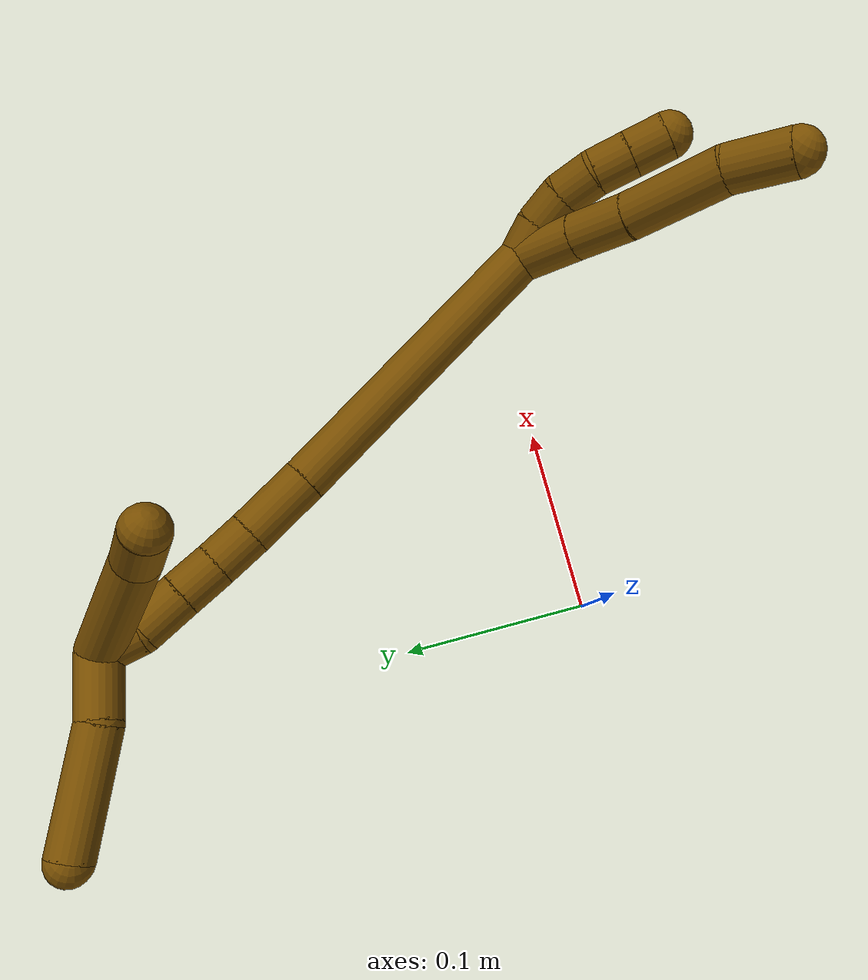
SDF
<sdf version="1.7">
 <world name="default">
  <model name="12">
   <static>0</static>
   <link name="12">
    <collision name="collision-cylinder-e_1_2_8">
     <pose>-0.008492 -0.004997 0.013648 0.35095 -0.528788 -0.095927</pose>
     <geometry><cylinder><radius>0.0125</radius><length>0.033667</length></cylinder></geometry>
     <surface>
      <friction><ode><mu>1.16</mu><mu2>1.16</mu2><slip1>0</slip1><slip2>0</slip2></ode></friction>
      <contact><ode><kp>1e+06</kp><kd>1</kd><max_vel>0</max_vel><min_depth>0.001</min_depth></ode></contact>
     </surface>
    </collision>
    <visual name="visual-cylinder-e_1_2_8">
     <pose>-0.008492 -0.004997 0.013648 0.35095 -0.528788 -0.095927</pose>
     <geometry><cylinder><radius>0.0125</radius><length>0.033667</length></cylinder></geometry>
     <material><ambient>0.466667 0.301961 0 1</ambient></material>
    </visual>
    <collision name="collision-cylinder-e_2_8_9">
     <pose>-0.024984 -0.014319 0.039626 0.337378 -0.549355 -0.095912</pose>
     <geometry><cylinder><radius>0.0125</radius><length>0.03064</length></cylinder></geometry>
     <surface>
      <friction><ode><mu>1.16</mu><mu2>1.16</mu2><slip1>0</slip1><slip2>0</slip2></ode></friction>
      <contact><ode><kp>1e+06</kp><kd>1</kd><max_vel>0</max_vel><min_depth>0.001</min_depth></ode></contact>
     </surface>
    </collision>
    <visual name="visual-cylinder-e_2_8_9">
     <pose>-0.024984 -0.014319 0.039626 0.337378 -0.549355 -0.095912</pose>
     <geometry><cylinder><radius>0.0125</radius><length>0.03064</length></cylinder></geometry>
     <material><ambient>0.466667 0.301961 0 1</ambient></material>
    </visual>
    <collision name="collision-cylinder-e_3_9_10">
     <pose>-0.044915 -0.026065 0.074093 0.32348 -0.472442 -0.078512</pose>
     <geometry><cylinder><radius>0.0125</radius><length>0.052442</length></cylinder></geometry>
     <surface>
      <friction><ode><mu>1.16</mu><mu2>1.16</mu2><slip1>0</slip1><slip2>0</slip2></ode></friction>
      <contact><ode><kp>1e+06</kp><kd>1</kd><max_vel>0</max_vel><min_depth>0.001</min_depth></ode></contact>
     </surface>
    </collision>
    <visual name="visual-cylinder-e_3_9_10">
     <pose>-0.044915 -0.026065 0.074093 0.32348 -0.472442 -0.078512</pose>
     <geometry><cylinder><radius>0.0125</radius><length>0.052442</length></cylinder></geometry>
     <material><ambient>0.466667 0.301961 0 1</ambient></material>
    </visual>
    <collision name="collision-cylinder-e_4_10_6">
     <pose>-0.067239 -0.038426 0.108232 0.390439 -0.675183 -0.138601</pose>
     <geometry><cylinder><radius>0.0125</radius><length>0.033251</length></cylinder></geometry>
     <surface>
      <friction><ode><mu>1.16</mu><mu2>1.16</mu2><slip1>0</slip1><slip2>0</slip2></ode></friction>
      <contact><ode><kp>1e+06</kp><kd>1</kd><max_vel>0</max_vel><min_depth>0.001</min_depth></ode></contact>
     </surface>
    </collision>
    <visual name="visual-cylinder-e_4_10_6">
     <pose>-0.067239 -0.038426 0.108232 0.390439 -0.675183 -0.138601</pose>
     <geometry><cylinder><radius>0.0125</radius><length>0.033251</length></cylinder></geometry>
     <material><ambient>0.466667 0.301961 0 1</ambient></material>
    </visual>
    <collision name="collision-cylinder-e_1_2_11">
     <pose>0.002604 -0.004087 0.008747 0.437049 0.263456 0.05883</pose>
     <geometry><cylinder><radius>0.0125</radius><length>0.02</length></cylinder></geometry>
     <surface>
      <friction><ode><mu>1.16</mu><mu2>1.16</mu2><slip1>0</slip1><slip2>0</slip2></ode></friction>
      <contact><ode><kp>1e+06</kp><kd>1</kd><max_vel>0</max_vel><min_depth>0.001</min_depth></ode></contact>
     </surface>
    </collision>
    <visual name="visual-cylinder-e_1_2_11">
     <pose>0.002604 -0.004087 0.008747 0.437049 0.263456 0.05883</pose>
     <geometry><cylinder><radius>0.0125</radius><length>0.02</length></cylinder></geometry>
     <material><ambient>0.466667 0.301961 0 1</ambient></material>
    </visual>
    <collision name="collision-cylinder-e_2_11_12">
     <pose>0.005265 -0.012046 0.026714 0.397682 0.005637 0.001136</pose>
     <geometry><cylinder><radius>0.0125</radius><length>0.02</length></cylinder></geometry>
     <surface>
      <friction><ode><mu>1.16</mu><mu2>1.16</mu2><slip1>0</slip1><slip2>0</slip2></ode></friction>
      <contact><ode><kp>1e+06</kp><kd>1</kd><max_vel>0</max_vel><min_depth>0.001</min_depth></ode></contact>
     </surface>
    </collision>
    <visual name="visual-cylinder-e_2_11_12">
     <pose>0.005265 -0.012046 0.026714 0.397682 0.005637 0.001136</pose>
     <geometry><cylinder><radius>0.0125</radius><length>0.02</length></cylinder></geometry>
     <material><ambient>0.466667 0.301961 0 1</ambient></material>
    </visual>
    <collision name="collision-cylinder-e_3_12_13">
     <pose>0.002579 -0.019933 0.044672 0.430645 -0.277797 -0.061133</pose>
     <geometry><cylinder><radius>0.0125</radius><length>0.02</length></cylinder></geometry>
     <surface>
      <friction><ode><mu>1.16</mu><mu2>1.16</mu2><slip1>0</slip1><slip2>0</slip2></ode></friction>
      <contact><ode><kp>1e+06</kp><kd>1</kd><max_vel>0</max_vel><min_depth>0.001</min_depth></ode></contact>
     </surface>
    </collision>
    <visual name="visual-cylinder-e_3_12_13">
     <pose>0.002579 -0.019933 0.044672 0.430645 -0.277797 -0.061133</pose>
     <geometry><cylinder><radius>0.0125</radius><length>0.02</length></cylinder></geometry>
     <material><ambient>0.466667 0.301961 0 1</ambient></material>
    </visual>
    <collision name="collision-cylinder-e_4_13_14">
     <pose>-0.003507 -0.029655 0.060911 0.650517 -0.340916 -0.115966</pose>
     <geometry><cylinder><radius>0.0125</radius><length>0.02</length></cylinder></geometry>
     <surface>
      <friction><ode><mu>1.16</mu><mu2>1.16</mu2><slip1>0</slip1><slip2>0</slip2></ode></friction>
      <contact><ode><kp>1e+06</kp><kd>1</kd><max_vel>0</max_vel><min_depth>0.001</min_depth></ode></contact>
     </surface>
    </collision>
    <visual name="visual-cylinder-e_4_13_14">
     <pose>-0.003507 -0.029655 0.060911 0.650517 -0.340916 -0.115966</pose>
     <geometry><cylinder><radius>0.0125</radius><length>0.02</length></cylinder></geometry>
     <material><ambient>0.466667 0.301961 0 1</ambient></material>
    </visual>
    <collision name="collision-cylinder-e_5_14_5">
     <pose>-0.010229 -0.041139 0.075842 0.660742 -0.344616 -0.119225</pose>
     <geometry><cylinder><radius>0.0125</radius><length>0.02</length></cylinder></geometry>
     <surface>
      <friction><ode><mu>1.16</mu><mu2>1.16</mu2><slip1>0</slip1><slip2>0</slip2></ode></friction>
      <contact><ode><kp>1e+06</kp><kd>1</kd><max_vel>0</max_vel><min_depth>0.001</min_depth></ode></contact>
     </surface>
    </collision>
    <visual name="visual-cylinder-e_5_14_5">
     <pose>-0.010229 -0.041139 0.075842 0.660742 -0.344616 -0.119225</pose>
     <geometry><cylinder><radius>0.0125</radius><length>0.02</length></cylinder></geometry>
     <material><ambient>0.466667 0.301961 0 1</ambient></material>
    </visual>
    <collision name="collision-cylinder-e_1_2_15">
     <pose>-0.013064 0.064532 -0.050738 -2.2371 -0.157818 0.322688</pose>
     <geometry><cylinder><radius>0.0125</radius><length>0.166246</length></cylinder></geometry>
     <surface>
      <friction><ode><mu>1.16</mu><mu2>1.16</mu2><slip1>0</slip1><slip2>0</slip2></ode></friction>
      <contact><ode><kp>1e+06</kp><kd>1</kd><max_vel>0</max_vel><min_depth>0.001</min_depth></ode></contact>
     </surface>
    </collision>
    <visual name="visual-cylinder-e_1_2_15">
     <pose>-0.013064 0.064532 -0.050738 -2.2371 -0.157818 0.322688</pose>
     <geometry><cylinder><radius>0.0125</radius><length>0.166246</length></cylinder></geometry>
     <material><ambient>0.466667 0.301961 0 1</ambient></material>
    </visual>
    <collision name="collision-cylinder-e_2_15_16">
     <pose>-0.028893 0.144495 -0.113048 -2.21424 -0.142397 0.283343</pose>
     <geometry><cylinder><radius>0.0125</radius><length>0.03897</length></cylinder></geometry>
     <surface>
      <friction><ode><mu>1.16</mu><mu2>1.16</mu2><slip1>0</slip1><slip2>0</slip2></ode></friction>
      <contact><ode><kp>1e+06</kp><kd>1</kd><max_vel>0</max_vel><min_depth>0.001</min_depth></ode></contact>
     </surface>
    </collision>
    <visual name="visual-cylinder-e_2_15_16">
     <pose>-0.028893 0.144495 -0.113048 -2.21424 -0.142397 0.283343</pose>
     <geometry><cylinder><radius>0.0125</radius><length>0.03897</length></cylinder></geometry>
     <material><ambient>0.466667 0.301961 0 1</ambient></material>
    </visual>
    <collision name="collision-cylinder-e_3_16_17">
     <pose>-0.033295 0.169721 -0.130863 -2.13826 -0.139954 0.254211</pose>
     <geometry><cylinder><radius>0.0125</radius><length>0.023461</length></cylinder></geometry>
     <surface>
      <friction><ode><mu>1.16</mu><mu2>1.16</mu2><slip1>0</slip1><slip2>0</slip2></ode></friction>
      <contact><ode><kp>1e+06</kp><kd>1</kd><max_vel>0</max_vel><min_depth>0.001</min_depth></ode></contact>
     </surface>
    </collision>
    <visual name="visual-cylinder-e_3_16_17">
     <pose>-0.033295 0.169721 -0.130863 -2.13826 -0.139954 0.254211</pose>
     <geometry><cylinder><radius>0.0125</radius><length>0.023461</length></cylinder></geometry>
     <material><ambient>0.466667 0.301961 0 1</ambient></material>
    </visual>
    <collision name="collision-cylinder-e_4_17_18">
     <pose>-0.036373 0.189339 -0.14285 -2.09991 -0.126084 0.219191</pose>
     <geometry><cylinder><radius>0.0125</radius><length>0.022938</length></cylinder></geometry>
     <surface>
      <friction><ode><mu>1.16</mu><mu2>1.16</mu2><slip1>0</slip1><slip2>0</slip2></ode></friction>
      <contact><ode><kp>1e+06</kp><kd>1</kd><max_vel>0</max_vel><min_depth>0.001</min_depth></ode></contact>
     </surface>
    </collision>
    <visual name="visual-cylinder-e_4_17_18">
     <pose>-0.036373 0.189339 -0.14285 -2.09991 -0.126084 0.219191</pose>
     <geometry><cylinder><radius>0.0125</radius><length>0.022938</length></cylinder></geometry>
     <material><ambient>0.466667 0.301961 0 1</ambient></material>
    </visual>
    <collision name="collision-cylinder-e_5_18_19">
     <pose>-0.039553 0.210202 -0.155282 -2.11544 -0.133798 0.236726</pose>
     <geometry><cylinder><radius>0.0125</radius><length>0.02605</length></cylinder></geometry>
     <surface>
      <friction><ode><mu>1.16</mu><mu2>1.16</mu2><slip1>0</slip1><slip2>0</slip2></ode></friction>
      <contact><ode><kp>1e+06</kp><kd>1</kd><max_vel>0</max_vel><min_depth>0.001</min_depth></ode></contact>
     </surface>
    </collision>
    <visual name="visual-cylinder-e_5_18_19">
     <pose>-0.039553 0.210202 -0.155282 -2.11544 -0.133798 0.236726</pose>
     <geometry><cylinder><radius>0.0125</radius><length>0.02605</length></cylinder></geometry>
     <material><ambient>0.466667 0.301961 0 1</ambient></material>
    </visual>
    <collision name="collision-cylinder-e_6_19_1">
     <pose>-0.039472 0.230645 -0.167715 -2.11931 0.163543 -0.290192</pose>
     <geometry><cylinder><radius>0.0125</radius><length>0.022335</length></cylinder></geometry>
     <surface>
      <friction><ode><mu>1.16</mu><mu2>1.16</mu2><slip1>0</slip1><slip2>0</slip2></ode></friction>
      <contact><ode><kp>1e+06</kp><kd>1</kd><max_vel>0</max_vel><min_depth>0.001</min_depth></ode></contact>
     </surface>
    </collision>
    <visual name="visual-cylinder-e_6_19_1">
     <pose>-0.039472 0.230645 -0.167715 -2.11931 0.163543 -0.290192</pose>
     <geometry><cylinder><radius>0.0125</radius><length>0.022335</length></cylinder></geometry>
     <material><ambient>0.466667 0.301961 0 1</ambient></material>
    </visual>
    <collision name="collision-cylinder-e_1_1_20">
     <pose>-0.037064 0.236392 -0.137481 0.101235 0.016312 0.000826</pose>
     <geometry><cylinder><radius>0.0125</radius><length>0.072338</length></cylinder></geometry>
     <surface>
      <friction><ode><mu>1.16</mu><mu2>1.16</mu2><slip1>0</slip1><slip2>0</slip2></ode></friction>
      <contact><ode><kp>1e+06</kp><kd>1</kd><max_vel>0</max_vel><min_depth>0.001</min_depth></ode></contact>
     </surface>
    </collision>
    <visual name="visual-cylinder-e_1_1_20">
     <pose>-0.037064 0.236392 -0.137481 0.101235 0.016312 0.000826</pose>
     <geometry><cylinder><radius>0.0125</radius><length>0.072338</length></cylinder></geometry>
     <material><ambient>0.466667 0.301961 0 1</ambient></material>
    </visual>
    <collision name="collision-cylinder-e_2_20_4">
     <pose>-0.038029 0.234253 -0.087843 -0.110556 -0.112671 0.006241</pose>
     <geometry><cylinder><radius>0.0125</radius><length>0.027662</length></cylinder></geometry>
     <surface>
      <friction><ode><mu>1.16</mu><mu2>1.16</mu2><slip1>0</slip1><slip2>0</slip2></ode></friction>
      <contact><ode><kp>1e+06</kp><kd>1</kd><max_vel>0</max_vel><min_depth>0.001</min_depth></ode></contact>
     </surface>
    </collision>
    <visual name="visual-cylinder-e_2_20_4">
     <pose>-0.038029 0.234253 -0.087843 -0.110556 -0.112671 0.006241</pose>
     <geometry><cylinder><radius>0.0125</radius><length>0.027662</length></cylinder></geometry>
     <material><ambient>0.466667 0.301961 0 1</ambient></material>
    </visual>
    <collision name="collision-cylinder-e_1_1_21">
     <pose>-0.05299 0.247268 -0.179119 -2.23549 -1.03165 1.72273</pose>
     <geometry><cylinder><radius>0.0125</radius><length>0.035742</length></cylinder></geometry>
     <surface>
      <friction><ode><mu>1.16</mu><mu2>1.16</mu2><slip1>0</slip1><slip2>0</slip2></ode></friction>
      <contact><ode><kp>1e+06</kp><kd>1</kd><max_vel>0</max_vel><min_depth>0.001</min_depth></ode></contact>
     </surface>
    </collision>
    <visual name="visual-cylinder-e_1_1_21">
     <pose>-0.05299 0.247268 -0.179119 -2.23549 -1.03165 1.72273</pose>
     <geometry><cylinder><radius>0.0125</radius><length>0.035742</length></cylinder></geometry>
     <material><ambient>0.466667 0.301961 0 1</ambient></material>
    </visual>
    <collision name="collision-cylinder-e_2_21_3">
     <pose>-0.090407 0.271274 -0.200996 -2.33905 -0.757709 1.50708</pose>
     <geometry><cylinder><radius>0.0125</radius><length>0.064258</length></cylinder></geometry>
     <surface>
      <friction><ode><mu>1.16</mu><mu2>1.16</mu2><slip1>0</slip1><slip2>0</slip2></ode></friction>
      <contact><ode><kp>1e+06</kp><kd>1</kd><max_vel>0</max_vel><min_depth>0.001</min_depth></ode></contact>
     </surface>
    </collision>
    <visual name="visual-cylinder-e_2_21_3">
     <pose>-0.090407 0.271274 -0.200996 -2.33905 -0.757709 1.50708</pose>
     <geometry><cylinder><radius>0.0125</radius><length>0.064258</length></cylinder></geometry>
     <material><ambient>0.466667 0.301961 0 1</ambient></material>
    </visual>
    <collision name="collision-sphere-3">
     <pose>-0.112488 0.288057 -0.217214 0 -0 0</pose>
     <geometry><sphere><radius>0.0125</radius></sphere></geometry>
     <surface>
      <friction><ode><mu>1.16</mu><mu2>1.16</mu2><slip1>0</slip1><slip2>0</slip2></ode></friction>
      <contact><ode><kp>1e+06</kp><kd>1</kd><max_vel>0</max_vel><min_depth>0.001</min_depth></ode></contact>
     </surface>
    </collision>
    <visual name="visual-sphere-3">
     <pose>-0.112488 0.288057 -0.217214 0 -0 0</pose>
     <geometry><sphere><radius>0.0125</radius></sphere></geometry>
     <material><ambient>0.466667 0.301961 0 1</ambient></material>
    </visual>
    <collision name="collision-sphere-21">
     <pose>-0.068326 0.25449 -0.184779 0 -0 0</pose>
     <geometry><sphere><radius>0.0125</radius></sphere></geometry>
     <surface>
      <friction><ode><mu>1.16</mu><mu2>1.16</mu2><slip1>0</slip1><slip2>0</slip2></ode></friction>
      <contact><ode><kp>1e+06</kp><kd>1</kd><max_vel>0</max_vel><min_depth>0.001</min_depth></ode></contact>
     </surface>
    </collision>
    <visual name="visual-sphere-21">
     <pose>-0.068326 0.25449 -0.184779 0 -0 0</pose>
     <geometry><sphere><radius>0.0125</radius></sphere></geometry>
     <material><ambient>0.466667 0.301961 0 1</ambient></material>
    </visual>
    <collision name="collision-sphere-4">
     <pose>-0.039584 0.23577 -0.074183 0 -0 0</pose>
     <geometry><sphere><radius>0.0125</radius></sphere></geometry>
     <surface>
      <friction><ode><mu>1.16</mu><mu2>1.16</mu2><slip1>0</slip1><slip2>0</slip2></ode></friction>
      <contact><ode><kp>1e+06</kp><kd>1</kd><max_vel>0</max_vel><min_depth>0.001</min_depth></ode></contact>
     </surface>
    </collision>
    <visual name="visual-sphere-4">
     <pose>-0.039584 0.23577 -0.074183 0 -0 0</pose>
     <geometry><sphere><radius>0.0125</radius></sphere></geometry>
     <material><ambient>0.466667 0.301961 0 1</ambient></material>
    </visual>
    <collision name="collision-sphere-20">
     <pose>-0.036474 0.232737 -0.101502 0 -0 0</pose>
     <geometry><sphere><radius>0.0125</radius></sphere></geometry>
     <surface>
      <friction><ode><mu>1.16</mu><mu2>1.16</mu2><slip1>0</slip1><slip2>0</slip2></ode></friction>
      <contact><ode><kp>1e+06</kp><kd>1</kd><max_vel>0</max_vel><min_depth>0.001</min_depth></ode></contact>
     </surface>
    </collision>
    <visual name="visual-sphere-20">
     <pose>-0.036474 0.232737 -0.101502 0 -0 0</pose>
     <geometry><sphere><radius>0.0125</radius></sphere></geometry>
     <material><ambient>0.466667 0.301961 0 1</ambient></material>
    </visual>
    <collision name="collision-sphere-11">
     <pose>0.005208 -0.008173 0.017495 0 -0 0</pose>
     <geometry><sphere><radius>0.0125</radius></sphere></geometry>
     <surface>
      <friction><ode><mu>1.16</mu><mu2>1.16</mu2><slip1>0</slip1><slip2>0</slip2></ode></friction>
      <contact><ode><kp>1e+06</kp><kd>1</kd><max_vel>0</max_vel><min_depth>0.001</min_depth></ode></contact>
     </surface>
    </collision>
    <visual name="visual-sphere-11">
     <pose>0.005208 -0.008173 0.017495 0 -0 0</pose>
     <geometry><sphere><radius>0.0125</radius></sphere></geometry>
     <material><ambient>0.466667 0.301961 0 1</ambient></material>
    </visual>
    <collision name="collision-sphere-6">
     <pose>-0.07763 -0.043366 0.120233 0 -0 0</pose>
     <geometry><sphere><radius>0.0125</radius></sphere></geometry>
     <surface>
      <friction><ode><mu>1.16</mu><mu2>1.16</mu2><slip1>0</slip1><slip2>0</slip2></ode></friction>
      <contact><ode><kp>1e+06</kp><kd>1</kd><max_vel>0</max_vel><min_depth>0.001</min_depth></ode></contact>
     </surface>
    </collision>
    <visual name="visual-sphere-6">
     <pose>-0.07763 -0.043366 0.120233 0 -0 0</pose>
     <geometry><sphere><radius>0.0125</radius></sphere></geometry>
     <material><ambient>0.466667 0.301961 0 1</ambient></material>
    </visual>
    <collision name="collision-sphere-10">
     <pose>-0.056847 -0.033487 0.096231 0 -0 0</pose>
     <geometry><sphere><radius>0.0125</radius></sphere></geometry>
     <surface>
      <friction><ode><mu>1.16</mu><mu2>1.16</mu2><slip1>0</slip1><slip2>0</slip2></ode></friction>
      <contact><ode><kp>1e+06</kp><kd>1</kd><max_vel>0</max_vel><min_depth>0.001</min_depth></ode></contact>
     </surface>
    </collision>
    <visual name="visual-sphere-10">
     <pose>-0.056847 -0.033487 0.096231 0 -0 0</pose>
     <geometry><sphere><radius>0.0125</radius></sphere></geometry>
     <material><ambient>0.466667 0.301961 0 1</ambient></material>
    </visual>
    <collision name="collision-sphere-9">
     <pose>-0.032983 -0.018644 0.051956 0 -0 0</pose>
     <geometry><sphere><radius>0.0125</radius></sphere></geometry>
     <surface>
      <friction><ode><mu>1.16</mu><mu2>1.16</mu2><slip1>0</slip1><slip2>0</slip2></ode></friction>
      <contact><ode><kp>1e+06</kp><kd>1</kd><max_vel>0</max_vel><min_depth>0.001</min_depth></ode></contact>
     </surface>
    </collision>
    <visual name="visual-sphere-9">
     <pose>-0.032983 -0.018644 0.051956 0 -0 0</pose>
     <geometry><sphere><radius>0.0125</radius></sphere></geometry>
     <material><ambient>0.466667 0.301961 0 1</ambient></material>
    </visual>
    <collision name="collision-sphere-2">
     <geometry><sphere><radius>0.0125</radius></sphere></geometry>
     <surface>
      <friction><ode><mu>1.16</mu><mu2>1.16</mu2><slip1>0</slip1><slip2>0</slip2></ode></friction>
      <contact><ode><kp>1e+06</kp><kd>1</kd><max_vel>0</max_vel><min_depth>0.001</min_depth></ode></contact>
     </surface>
    </collision>
    <visual name="visual-sphere-2">
     <geometry><sphere><radius>0.0125</radius></sphere></geometry>
     <material><ambient>0.466667 0.301961 0 1</ambient></material>
    </visual>
    <collision name="collision-sphere-19">
     <pose>-0.041291 0.221243 -0.16197 0 -0 0</pose>
     <geometry><sphere><radius>0.0125</radius></sphere></geometry>
     <surface>
      <friction><ode><mu>1.16</mu><mu2>1.16</mu2><slip1>0</slip1><slip2>0</slip2></ode></friction>
      <contact><ode><kp>1e+06</kp><kd>1</kd><max_vel>0</max_vel><min_depth>0.001</min_depth></ode></contact>
     </surface>
    </collision>
    <visual name="visual-sphere-19">
     <pose>-0.041291 0.221243 -0.16197 0 -0 0</pose>
     <geometry><sphere><radius>0.0125</radius></sphere></geometry>
     <material><ambient>0.466667 0.301961 0 1</ambient></material>
    </visual>
    <collision name="collision-sphere-8">
     <pose>-0.016984 -0.009993 0.027297 0 -0 0</pose>
     <geometry><sphere><radius>0.0125</radius></sphere></geometry>
     <surface>
      <friction><ode><mu>1.16</mu><mu2>1.16</mu2><slip1>0</slip1><slip2>0</slip2></ode></friction>
      <contact><ode><kp>1e+06</kp><kd>1</kd><max_vel>0</max_vel><min_depth>0.001</min_depth></ode></contact>
     </surface>
    </collision>
    <visual name="visual-sphere-8">
     <pose>-0.016984 -0.009993 0.027297 0 -0 0</pose>
     <geometry><sphere><radius>0.0125</radius></sphere></geometry>
     <material><ambient>0.466667 0.301961 0 1</ambient></material>
    </visual>
    <collision name="collision-sphere-12">
     <pose>0.005321 -0.015919 0.035934 0 -0 0</pose>
     <geometry><sphere><radius>0.0125</radius></sphere></geometry>
     <surface>
      <friction><ode><mu>1.16</mu><mu2>1.16</mu2><slip1>0</slip1><slip2>0</slip2></ode></friction>
      <contact><ode><kp>1e+06</kp><kd>1</kd><max_vel>0</max_vel><min_depth>0.001</min_depth></ode></contact>
     </surface>
    </collision>
    <visual name="visual-sphere-12">
     <pose>0.005321 -0.015919 0.035934 0 -0 0</pose>
     <geometry><sphere><radius>0.0125</radius></sphere></geometry>
     <material><ambient>0.466667 0.301961 0 1</ambient></material>
    </visual>
    <collision name="collision-sphere-13">
     <pose>-0.000164 -0.023948 0.053411 0 -0 0</pose>
     <geometry><sphere><radius>0.0125</radius></sphere></geometry>
     <surface>
      <friction><ode><mu>1.16</mu><mu2>1.16</mu2><slip1>0</slip1><slip2>0</slip2></ode></friction>
      <contact><ode><kp>1e+06</kp><kd>1</kd><max_vel>0</max_vel><min_depth>0.001</min_depth></ode></contact>
     </surface>
    </collision>
    <visual name="visual-sphere-13">
     <pose>-0.000164 -0.023948 0.053411 0 -0 0</pose>
     <geometry><sphere><radius>0.0125</radius></sphere></geometry>
     <material><ambient>0.466667 0.301961 0 1</ambient></material>
    </visual>
    <collision name="collision-sphere-14">
     <pose>-0.006851 -0.035363 0.06841 0 -0 0</pose>
     <geometry><sphere><radius>0.0125</radius></sphere></geometry>
     <surface>
      <friction><ode><mu>1.16</mu><mu2>1.16</mu2><slip1>0</slip1><slip2>0</slip2></ode></friction>
      <contact><ode><kp>1e+06</kp><kd>1</kd><max_vel>0</max_vel><min_depth>0.001</min_depth></ode></contact>
     </surface>
    </collision>
    <visual name="visual-sphere-14">
     <pose>-0.006851 -0.035363 0.06841 0 -0 0</pose>
     <geometry><sphere><radius>0.0125</radius></sphere></geometry>
     <material><ambient>0.466667 0.301961 0 1</ambient></material>
    </visual>
    <collision name="collision-sphere-5">
     <pose>-0.013607 -0.046915 0.083273 0 -0 0</pose>
     <geometry><sphere><radius>0.0125</radius></sphere></geometry>
     <surface>
      <friction><ode><mu>1.16</mu><mu2>1.16</mu2><slip1>0</slip1><slip2>0</slip2></ode></friction>
      <contact><ode><kp>1e+06</kp><kd>1</kd><max_vel>0</max_vel><min_depth>0.001</min_depth></ode></contact>
     </surface>
    </collision>
    <visual name="visual-sphere-5">
     <pose>-0.013607 -0.046915 0.083273 0 -0 0</pose>
     <geometry><sphere><radius>0.0125</radius></sphere></geometry>
     <material><ambient>0.466667 0.301961 0 1</ambient></material>
    </visual>
    <collision name="collision-sphere-15">
     <pose>-0.026128 0.129064 -0.101477 0 -0 0</pose>
     <geometry><sphere><radius>0.0125</radius></sphere></geometry>
     <surface>
      <friction><ode><mu>1.16</mu><mu2>1.16</mu2><slip1>0</slip1><slip2>0</slip2></ode></friction>
      <contact><ode><kp>1e+06</kp><kd>1</kd><max_vel>0</max_vel><min_depth>0.001</min_depth></ode></contact>
     </surface>
    </collision>
    <visual name="visual-sphere-15">
     <pose>-0.026128 0.129064 -0.101477 0 -0 0</pose>
     <geometry><sphere><radius>0.0125</radius></sphere></geometry>
     <material><ambient>0.466667 0.301961 0 1</ambient></material>
    </visual>
    <collision name="collision-sphere-16">
     <pose>-0.031658 0.159926 -0.12462 0 -0 0</pose>
     <geometry><sphere><radius>0.0125</radius></sphere></geometry>
     <surface>
      <friction><ode><mu>1.16</mu><mu2>1.16</mu2><slip1>0</slip1><slip2>0</slip2></ode></friction>
      <contact><ode><kp>1e+06</kp><kd>1</kd><max_vel>0</max_vel><min_depth>0.001</min_depth></ode></contact>
     </surface>
    </collision>
    <visual name="visual-sphere-16">
     <pose>-0.031658 0.159926 -0.12462 0 -0 0</pose>
     <geometry><sphere><radius>0.0125</radius></sphere></geometry>
     <material><ambient>0.466667 0.301961 0 1</ambient></material>
    </visual>
    <collision name="collision-sphere-17">
     <pose>-0.034931 0.179517 -0.137107 0 -0 0</pose>
     <geometry><sphere><radius>0.0125</radius></sphere></geometry>
     <surface>
      <friction><ode><mu>1.16</mu><mu2>1.16</mu2><slip1>0</slip1><slip2>0</slip2></ode></friction>
      <contact><ode><kp>1e+06</kp><kd>1</kd><max_vel>0</max_vel><min_depth>0.001</min_depth></ode></contact>
     </surface>
    </collision>
    <visual name="visual-sphere-17">
     <pose>-0.034931 0.179517 -0.137107 0 -0 0</pose>
     <geometry><sphere><radius>0.0125</radius></sphere></geometry>
     <material><ambient>0.466667 0.301961 0 1</ambient></material>
    </visual>
    <collision name="collision-sphere-18">
     <pose>-0.037816 0.199161 -0.148593 0 -0 0</pose>
     <geometry><sphere><radius>0.0125</radius></sphere></geometry>
     <surface>
      <friction><ode><mu>1.16</mu><mu2>1.16</mu2><slip1>0</slip1><slip2>0</slip2></ode></friction>
      <contact><ode><kp>1e+06</kp><kd>1</kd><max_vel>0</max_vel><min_depth>0.001</min_depth></ode></contact>
     </surface>
    </collision>
    <visual name="visual-sphere-18">
     <pose>-0.037816 0.199161 -0.148593 0 -0 0</pose>
     <geometry><sphere><radius>0.0125</radius></sphere></geometry>
     <material><ambient>0.466667 0.301961 0 1</ambient></material>
    </visual>
    <collision name="collision-sphere-1">
     <pose>-0.037654 0.240047 -0.17346 0 -0 0</pose>
     <geometry><sphere><radius>0.0125</radius></sphere></geometry>
     <surface>
      <friction><ode><mu>1.16</mu><mu2>1.16</mu2><slip1>0</slip1><slip2>0</slip2></ode></friction>
      <contact><ode><kp>1e+06</kp><kd>1</kd><max_vel>0</max_vel><min_depth>0.001</min_depth></ode></contact>
     </surface>
    </collision>
    <visual name="visual-sphere-1">
     <pose>-0.037654 0.240047 -0.17346 0 -0 0</pose>
     <geometry><sphere><radius>0.0125</radius></sphere></geometry>
     <material><ambient>0.466667 0.301961 0 1</ambient></material>
    </visual>
    <inertial>
     <pose>-0.03196 0.106363 -0.060234 0 -0 0</pose>
     <mass>0.75</mass>
     <inertia>
      <ixx>0.000573</ixx>
      <ixy>0</ixy>
      <ixz>0</ixz>
      <iyy>2.1e-05</iyy>
      <iyz>0</iyz>
      <izz>-0.00021</izz>
     </inertia>
    </inertial>
   </link>
   <pose>0.185798 -0.012069 0.052934 0.627255 0.230957 0.391451</pose>
  </model>
 </world>
</sdf>
